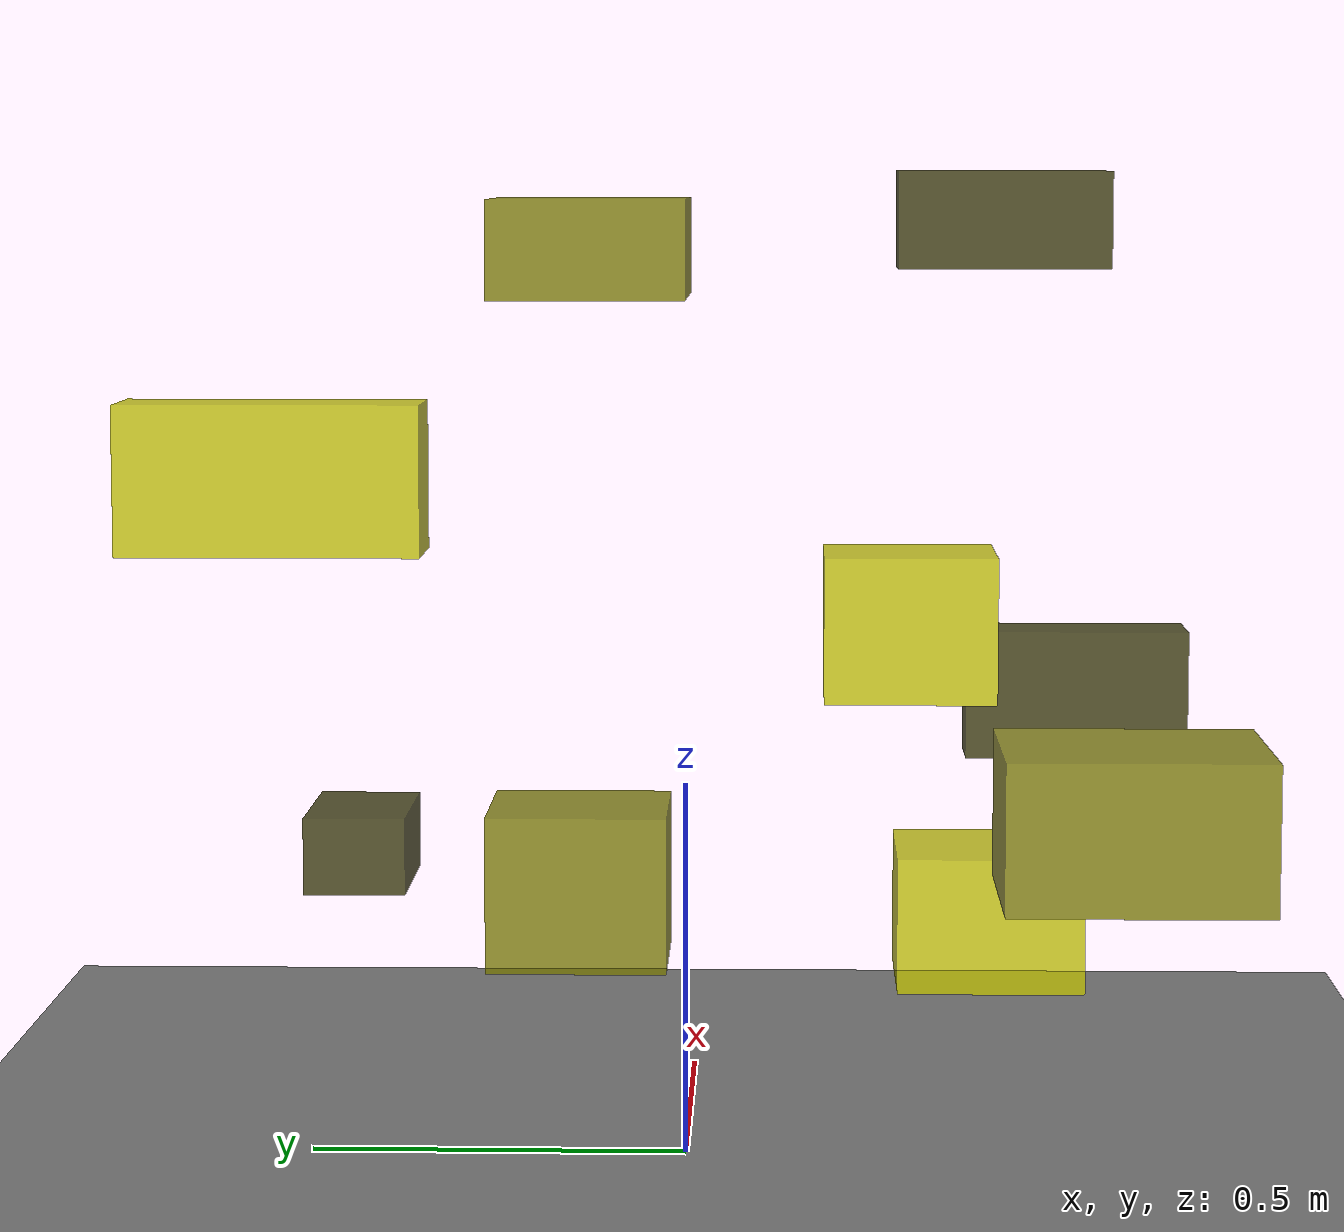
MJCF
<?xml version="1.0"?>
<mujoco model="obstacle_scene">
  <compiler angle="radian" coordinate="local"/>
  <option timestep="0.001" gravity="0 0 -9.81"/>

  <asset>
    <material name="obstacle_mat" rgba="0.8 0.8 0.0 0.8"/>
    <material name="ground_mat" rgba="0.5 0.5 0.5 1"/>
  </asset>

  <worldbody>
    <!-- Ground plane -->
    <geom name="ground" type="plane" size="3 3 0.1" material="ground_mat"/>

    <!-- Obstacles -->
    <body name="obstacle_0" pos="0.722613 -0.568885 0.523079">
      <geom name="obs_0" type="box" size="0.059363 0.165611 0.095428" rgba="0.2 0.2 0.0 0.8"/>
    </body>
    <body name="obstacle_1" pos="0.145745 0.131087 1.202653">
      <geom name="obs_1" type="box" size="0.160036 0.130279 0.065877" rgba="0.5 0.5 0.0 0.8"/>
    </body>
    <body name="obstacle_2" pos="-0.182315 -0.287459 0.737195">
      <geom name="obs_2" type="box" size="0.090895 0.107703 0.091739" rgba="0.8 0.8 0.0 0.8"/>
    </body>
    <body name="obstacle_3" pos="0.783480 -0.457994 1.230332">
      <geom name="obs_3" type="box" size="0.075586 0.158628 0.072518" rgba="0.2 0.2 0.0 0.8"/>
    </body>
    <body name="obstacle_4" pos="-0.483821 -0.544665 0.537827">
      <geom name="obs_4" type="box" size="0.135473 0.158537 0.091066" rgba="0.5 0.5 0.0 0.8"/>
    </body>
    <body name="obstacle_5" pos="-0.026219 0.540740 0.907112">
      <geom name="obs_5" type="box" size="0.066191 0.198718 0.098838" rgba="0.8 0.8 0.0 0.8"/>
    </body>
    <body name="obstacle_6" pos="0.692479 0.508548 0.290311">
      <geom name="obs_6" type="box" size="0.120962 0.075767 0.057388" rgba="0.2 0.2 0.0 0.8"/>
    </body>
    <body name="obstacle_7" pos="-0.245809 0.127406 0.416482">
      <geom name="obs_7" type="box" size="0.106764 0.112126 0.097357" rgba="0.5 0.5 0.0 0.8"/>
    </body>
    <body name="obstacle_8" pos="0.190545 -0.410604 0.291894">
      <geom name="obs_8" type="box" size="0.117692 0.126462 0.091897" rgba="0.8 0.8 0.0 0.8"/>
    </body>
  </worldbody>
</mujoco>
